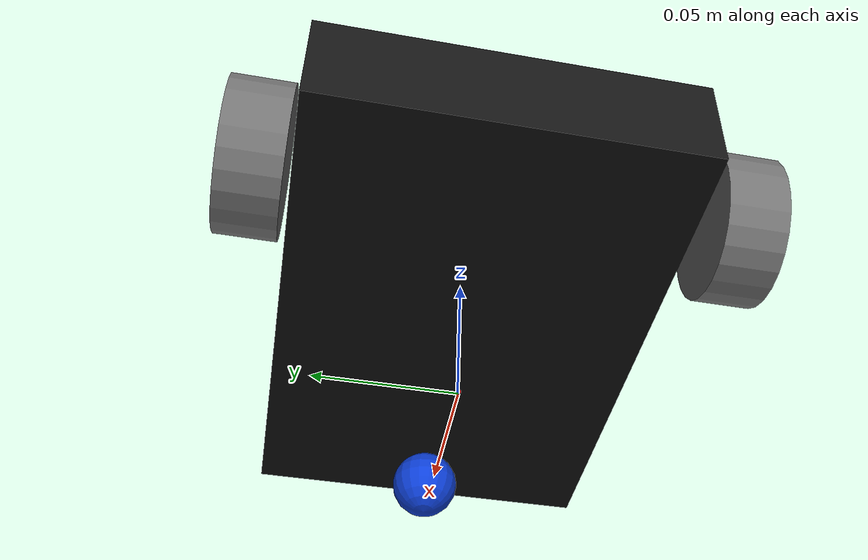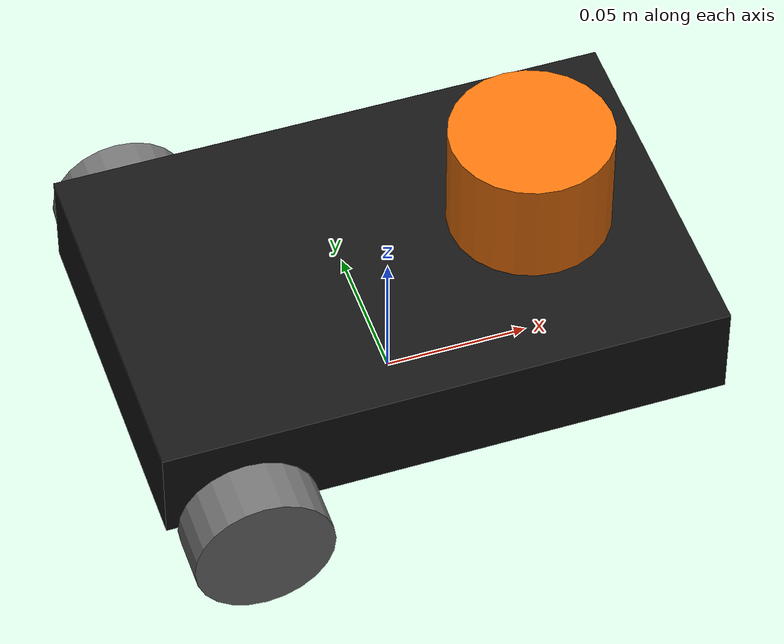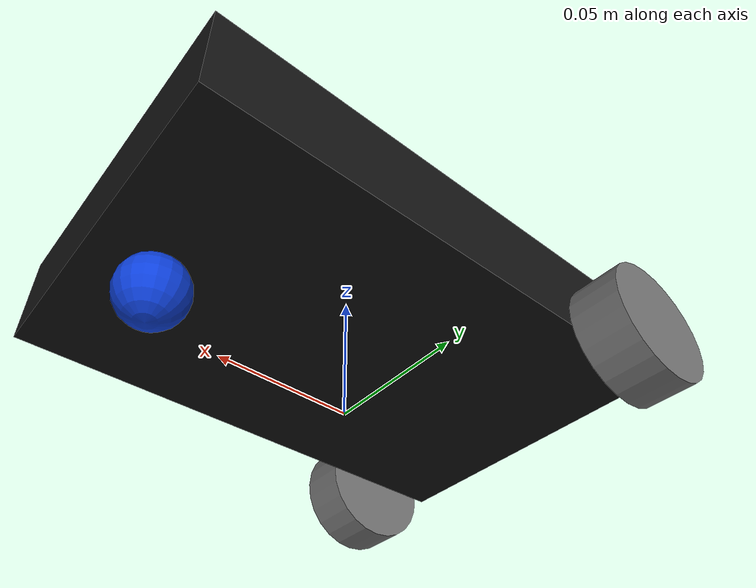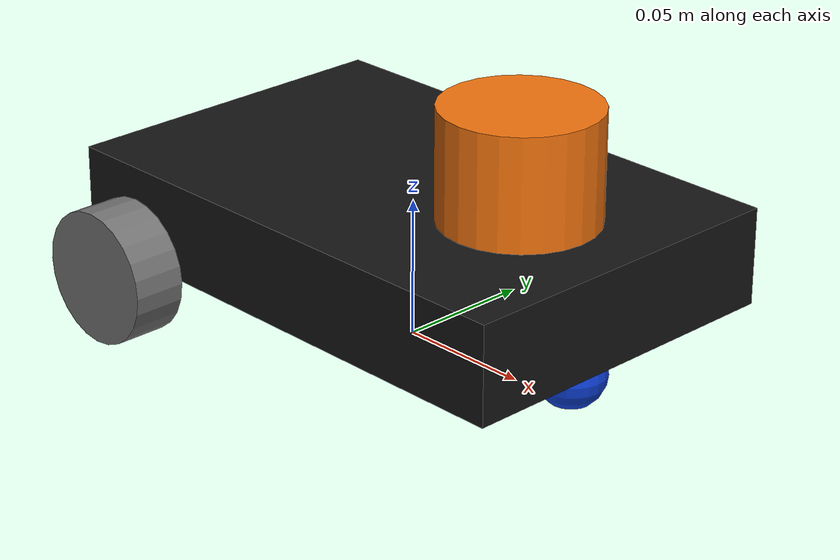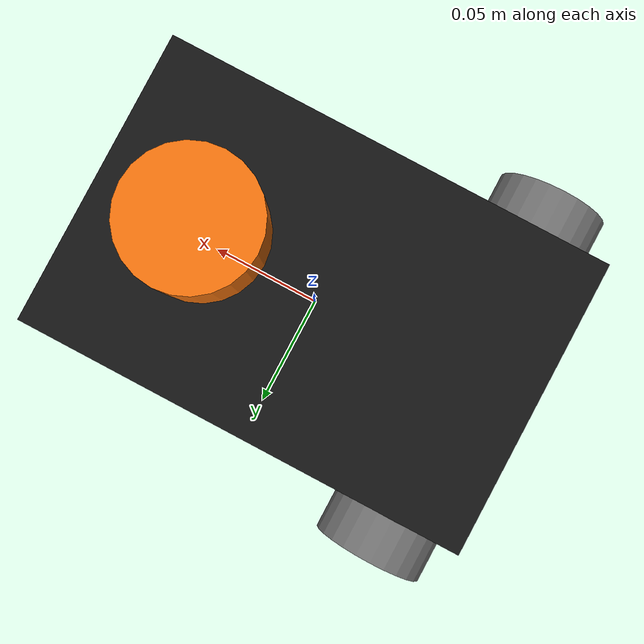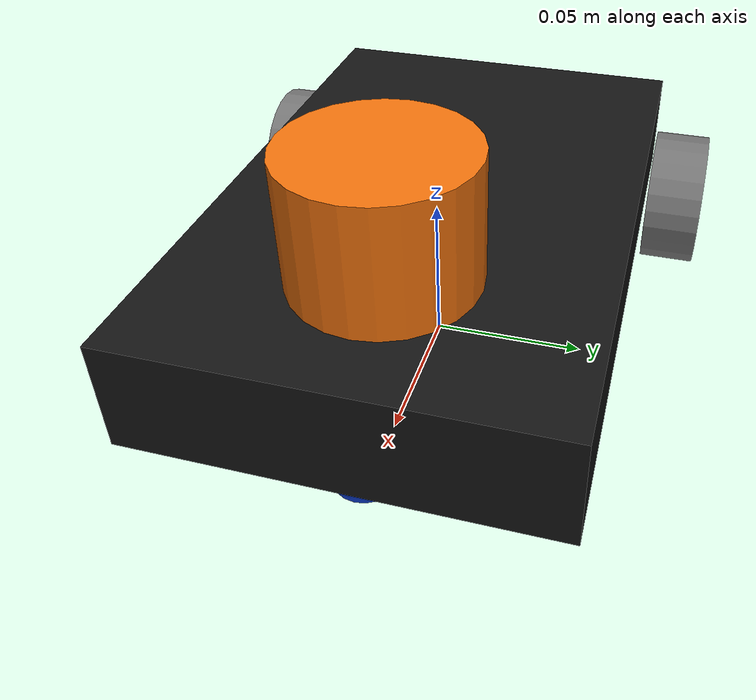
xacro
<?xml version="1.0"?>
<robot name="two_wheel_diff_car"
       xmlns:xacro="http://www.ros.org/wiki/xacro">

  <xacro:property name="footprint_radius" value="0.001"/>

  <xacro:property name="chassis_length" value="0.195"/>
  <xacro:property name="chassis_width" value="0.128"/>
  <xacro:property name="chassis_height" value="0.035"/>
  <xacro:property name="chassis_mass" value="1.0"/>

  <xacro:property name="wheel_radius" value="0.024"/>
  <xacro:property name="wheel_width" value="0.0192"/>
  <xacro:property name="wheel_mass" value="0.12"/>
  <xacro:property name="wheel_x" value="-0.070"/>

  <xacro:property name="wheel_y" value="0.07485"/>

  <xacro:property name="caster_radius" value="0.0125"/>
  <xacro:property name="caster_mass" value="0.03"/>
  <xacro:property name="caster_x" value="0.075"/>

  <xacro:property name="laser_x" value="0.05"/>
  <xacro:property name="laser_y" value="0.0"/>
  <xacro:property name="laser_radius" value="0.028"/>
  <xacro:property name="laser_height" value="0.040"/>

  <xacro:property name="laser_z" value="${chassis_height + laser_height / 2.0}"/>
  <xacro:property name="laser_mass" value="0.10"/>

  <material name="black">
    <color rgba="0.08 0.08 0.08 1"/>
  </material>
  <material name="gray">
    <color rgba="0.45 0.45 0.45 1"/>
  </material>
  <material name="blue">
    <color rgba="0.05 0.25 0.85 1"/>
  </material>
  <material name="red">
    <color rgba="0.90 0.05 0.05 1"/>
  </material>
  <material name="orange">
    <color rgba="0.95 0.45 0.05 1"/>
  </material>

  <xacro:macro name="box_inertial" params="mass x y z origin_xyz">
    <inertial>
      <origin xyz="${origin_xyz}" rpy="0 0 0"/>
      <mass value="${mass}"/>
      <inertia
        ixx="${mass * (y*y + z*z) / 12.0}"
        ixy="0" ixz="0"
        iyy="${mass * (x*x + z*z) / 12.0}"
        iyz="0"
        izz="${mass * (x*x + y*y) / 12.0}"/>
    </inertial>
  </xacro:macro>

  <xacro:macro name="y_cylinder_inertial" params="mass radius length">
    <inertial>
      <origin xyz="0 0 0" rpy="0 0 0"/>
      <mass value="${mass}"/>
      <inertia
        ixx="${mass * (3.0*radius*radius + length*length) / 12.0}"
        ixy="0" ixz="0"
        iyy="${mass * radius*radius / 2.0}"
        iyz="0"
        izz="${mass * (3.0*radius*radius + length*length) / 12.0}"/>
    </inertial>
  </xacro:macro>

  <xacro:macro name="z_cylinder_inertial" params="mass radius length">
    <inertial>
      <origin xyz="0 0 0" rpy="0 0 0"/>
      <mass value="${mass}"/>
      <inertia
        ixx="${mass * (3.0*radius*radius + length*length) / 12.0}"
        ixy="0" ixz="0"
        iyy="${mass * (3.0*radius*radius + length*length) / 12.0}"
        iyz="0"
        izz="${mass * radius*radius / 2.0}"/>
    </inertial>
  </xacro:macro>

  <xacro:macro name="sphere_inertial" params="mass radius">
    <inertial>
      <origin xyz="0 0 0" rpy="0 0 0"/>
      <mass value="${mass}"/>
      <inertia
        ixx="${2.0 * mass * radius*radius / 5.0}"
        ixy="0" ixz="0"
        iyy="${2.0 * mass * radius*radius / 5.0}"
        iyz="0"
        izz="${2.0 * mass * radius*radius / 5.0}"/>
    </inertial>
  </xacro:macro>

  <link name="base_footprint">
    <visual>
      <origin xyz="0 0 ${footprint_radius}" rpy="0 0 0"/>
      <geometry>
        <sphere radius="${footprint_radius}"/>
      </geometry>
      <material name="red"/>
    </visual>
    <collision>
      <origin xyz="0 0 ${footprint_radius}" rpy="0 0 0"/>
      <geometry>
        <sphere radius="${footprint_radius}"/>
      </geometry>
    </collision>
  </link>

  <joint name="base_footprint_joint" type="fixed">
    <origin xyz="0 0 ${wheel_radius}" rpy="0 0 0"/>
    <parent link="base_footprint"/>
    <child link="base_link"/>
  </joint>

  <link name="base_link">
    <visual>
      <origin xyz="0 0 ${chassis_height / 2.0}" rpy="0 0 0"/>
      <geometry>
        <box size="${chassis_length} ${chassis_width} ${chassis_height}"/>
      </geometry>
      <material name="black"/>
    </visual>
    <collision>
      <origin xyz="0 0 ${chassis_height / 2.0}" rpy="0 0 0"/>
      <geometry>
        <box size="${chassis_length} ${chassis_width} ${chassis_height}"/>
      </geometry>
    </collision>
    <xacro:box_inertial
      mass="${chassis_mass}"
      x="${chassis_length}"
      y="${chassis_width}"
      z="${chassis_height}"
      origin_xyz="0 0 ${chassis_height / 2.0}"/>
  </link>

  <xacro:macro name="drive_wheel" params="prefix y_offset">
    <link name="${prefix}_wheel_link">
      <visual>
        <origin xyz="0 0 0" rpy="${pi / 2.0} 0 0"/>
        <geometry>
          <cylinder radius="${wheel_radius}" length="${wheel_width}"/>
        </geometry>
        <material name="gray"/>
      </visual>
      <collision>
        <origin xyz="0 0 0" rpy="${pi / 2.0} 0 0"/>
        <geometry>
          <cylinder radius="${wheel_radius}" length="${wheel_width}"/>
        </geometry>
      </collision>
      <xacro:y_cylinder_inertial
        mass="${wheel_mass}"
        radius="${wheel_radius}"
        length="${wheel_width}"/>
    </link>

    <joint name="${prefix}_wheel_joint" type="continuous">
      <origin xyz="${wheel_x} ${y_offset} 0" rpy="0 0 0"/>
      <parent link="base_link"/>
      <child link="${prefix}_wheel_link"/>
      <axis xyz="0 1 0"/>
      <dynamics damping="0.05" friction="0.02"/>
    </joint>
  </xacro:macro>

  <xacro:drive_wheel prefix="left" y_offset="${wheel_y}"/>
  <xacro:drive_wheel prefix="right" y_offset="${-wheel_y}"/>

  <link name="front_caster_link">
    <visual>
      <origin xyz="0 0 0" rpy="0 0 0"/>
      <geometry>
        <sphere radius="${caster_radius}"/>
      </geometry>
      <material name="blue"/>
    </visual>
    <collision>
      <origin xyz="0 0 0" rpy="0 0 0"/>
      <geometry>
        <sphere radius="${caster_radius}"/>
      </geometry>
    </collision>
    <xacro:sphere_inertial mass="${caster_mass}" radius="${caster_radius}"/>
  </link>

  <joint name="front_caster_joint" type="fixed">
    <origin
      xyz="${caster_x} 0 ${caster_radius - wheel_radius}"
      rpy="0 0 0"/>
    <parent link="base_link"/>
    <child link="front_caster_link"/>
  </joint>

  <link name="laser_frame">
    <visual>
      <origin xyz="0 0 0" rpy="0 0 0"/>
      <geometry>
        <cylinder radius="${laser_radius}" length="${laser_height}"/>
      </geometry>
      <material name="orange"/>
    </visual>
    <collision>
      <origin xyz="0 0 0" rpy="0 0 0"/>
      <geometry>
        <cylinder radius="${laser_radius}" length="${laser_height}"/>
      </geometry>
    </collision>
    <xacro:z_cylinder_inertial
      mass="${laser_mass}"
      radius="${laser_radius}"
      length="${laser_height}"/>
  </link>

  <joint name="laser_joint" type="fixed">
    <origin xyz="${laser_x} ${laser_y} ${laser_z}" rpy="0 0 0"/>
    <parent link="base_link"/>
    <child link="laser_frame"/>
  </joint>

</robot>
